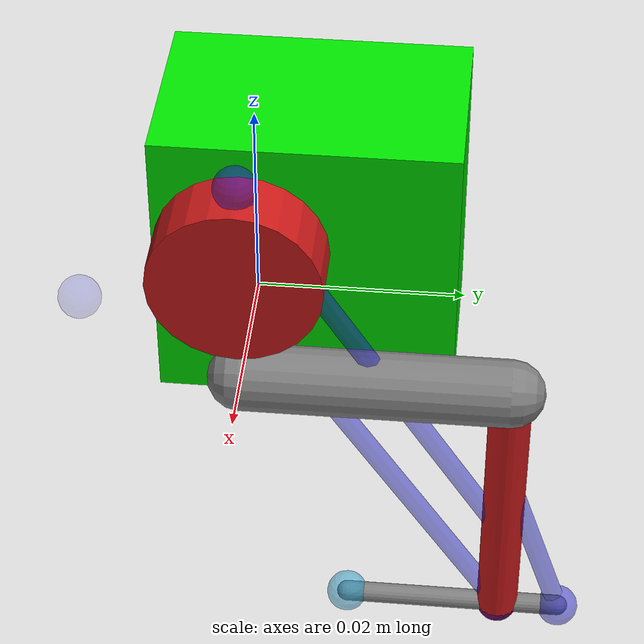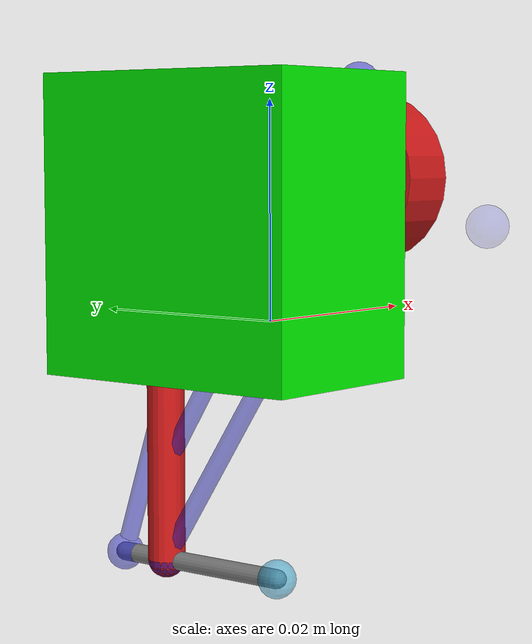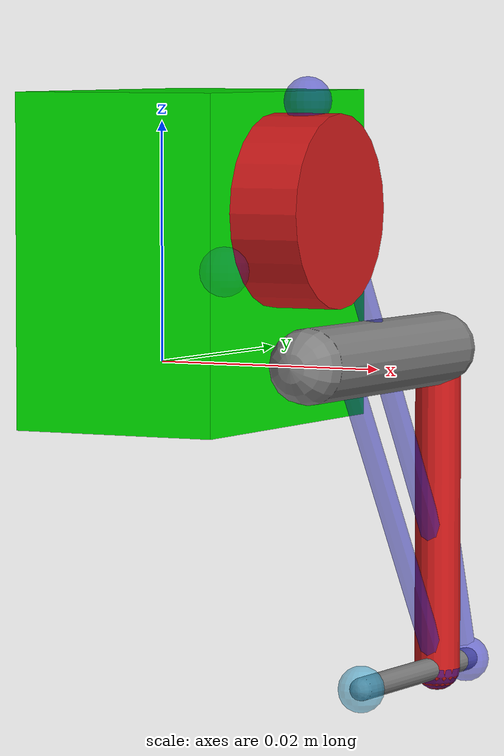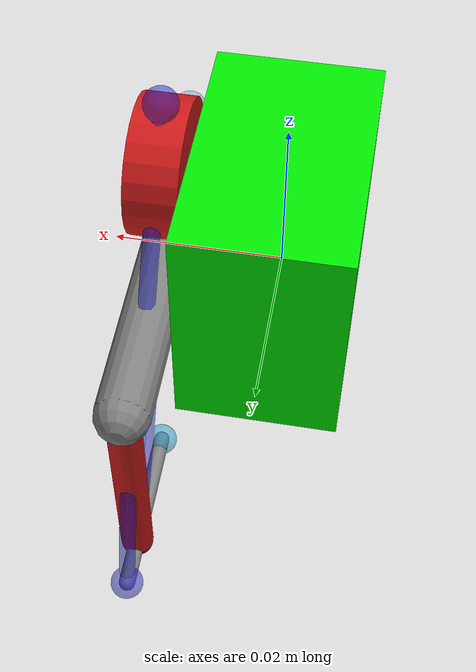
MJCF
<mujoco>

    <compiler angle="degree"/>

    <asset>
        <texture type="skybox" builtin="gradient" rgb1="1 1 1" rgb2=".6 .8 1" width="256" height="256"/>
    </asset>

    <worldbody>
        <light diffuse=".5 .5 .5" pos="0 0 3" dir="0 0 -1"/>
        <!-- geom type="plane" size="0.1 .1 0.03" rgba=".9 0 0 1"/ -->
        <body pos="0 0.0055 0.0085">
            <geom name="main_box" mass=".040" type="box" size=".0091 .014 .014" rgba="0 .9 0 1"/>

            <camera name="body_cam" mode="fixed" pos="0.2 -0.01 0" euler="90 90 0"/>
            <!-- Extension with slider for jumping -->
            <!-- joint name="rail" type="slide" axis="0 0 1"/ -->
            <!-- joint name="rail" type="slide" axis="0 0 1" damping="0.01" frictionloss="0.01" pos="0 -0.3325 0"/-->
            <body name ="main_leg" pos="0.0136 -0.0055 -0.0085">

                <joint name="m1" pos="0 0 0" type="hinge" axis="1 0 0" damping="0.01" armature="0.00065" limited="true" range="-180 180" ref="90"/>
                <geom name="leg1" mass="0.001" type="capsule" fromto="0 0 0 0 0.025 0" size="0.0032"/>
                <site name="knee_start" pos="0 0.0068 0" size="0.002" rgba=".1 .1 .8 0.5"/>
                <body name="lower_leg" pos="0 0.025 0">
                    <joint name="knee1" pos="0 0 0" type="hinge" axis="1 0 0" damping="0.01" armature="0.00065" limited="true" range="-90 90" />
                    <geom name="leg2" type="capsule" mass="0.0015" fromto="0 0 0 0 0 -0.028" size="0.002" rgba=".8 .1 .1 1"/>
                    <site name="m2_pickup" pos="0 0 -0.018" size="0.002" rgba=".1 .1 .8 0.5"/>
                    <site name="knee_pickup" pos="0 0 -0.028" size="0.002" rgba=".1 .1 .8 0.5"/>
                    <site name="ankle_start" pos="0 0 -0.010" size="0.002" rgba=".1 .1 .8 0.5"/>
                    <body name="foot" pos="0 0 -0.028">
                        <joint name="ankle" pos="0 0 0" type="hinge" axis="1 0 0" damping="0.01" armature="0.00065" limited="true" range="-90 70"/>
                        <geom name="foot1" type="capsule" mass="0.001" fromto="0 -0.015 0 0 0.006 0" size="0.001"/>
                        <site name="ankle_pickup" pos="0 0.006 0" size="0.002" rgba=".1 .1 .8 0.5"/>
                        <site name="end_point" pos="0 -0.015 0" size="0.002" rgba=".1 .6 .8 0.5"/>
                    </body>
                </body>
            </body>

            <site name="x1" pos="0.0136 -0.02 0.00" size="0.002" rgba=".1 .1 .8 0.2"/>
            <body name="servo2" pos="0.0136 -0.0055 0.0043">
                <geom name="motor2" type="cylinder" mass="0.002" fromto="-0.003 0 0 0.003 0 0" size="0.008" rgba=".8 .1 .1 1" />
                <joint name="m2" pos="0 0 0" type="hinge" axis="1 0 0" armature="0.00065" damping="0.01" limited="true" range="-180 180"/>

                <site name="s1" pos="0.0 0 0.009" size="0.002" rgba=".1 .1 .8 0.5"/>
            </body>
        </body>
    </worldbody>

    <contact>
        <exclude body1="main_leg" body2="servo2"/>
    </contact>

    <tendon>
        <spatial name="m2_tendon" limited="true" range="0 0.0587" width="0.001" rgba=".1 .1 .8 0.5">
            <site site="s1"/>
            <geom geom="motor2" sidesite="x1"/>
            <site site="m2_pickup"/>
        </spatial>

        <!-- adjust the stiffness values of these springs -->
        <spatial name="knee_tendon" springlength="0.05" stiffness="500" width="0.001" rgba=".1 .1 .8 0.5">
            <site site="knee_start"/>
            <site site="knee_pickup"/>
        </spatial>

        <spatial name="ankle_tendon" springlength="0.013" stiffness="2000" width="0.001" rgba=".1 .1 .8 0.5">
            <site site="ankle_start"/>
            <site site="ankle_pickup"/>
        </spatial>
    </tendon>

    <sensor>
        <!-- tendonpos name="tendon_length" tendon="m2_tendon"/-->
        <framepos name="leg_endpoint" objtype="site" objname="end_point"/>
    </sensor>

    <actuator>
        <position name="m1" gear="1" ctrllimited="true" ctrlrange="-2.00 2.00"  forcelimited="true" forcerange="-0.157 0.157" joint="m1" kp="500"/>
        <position name="m2" gear="1" ctrllimited="true"  ctrlrange="-2.00 2.00 " forcelimited="true" forcerange="-0.157 0.157" joint="m2" kp="500"/>
    </actuator>
</mujoco>
